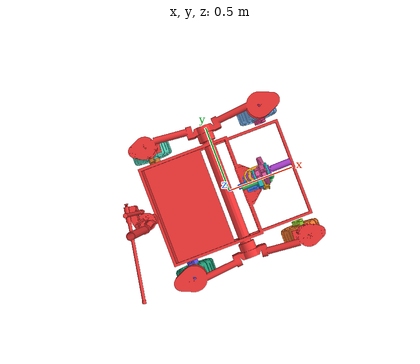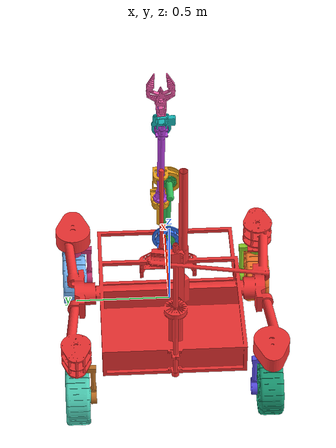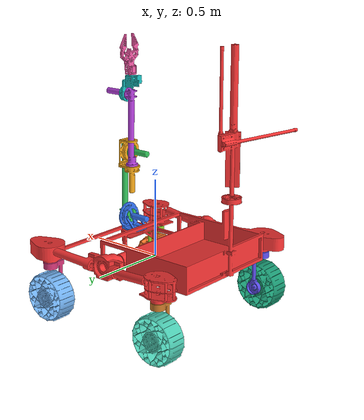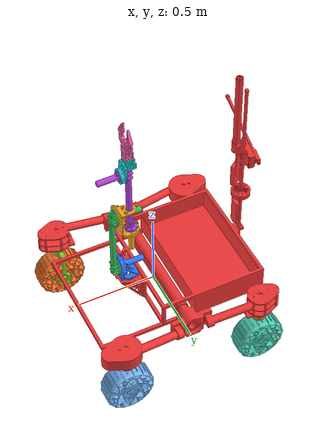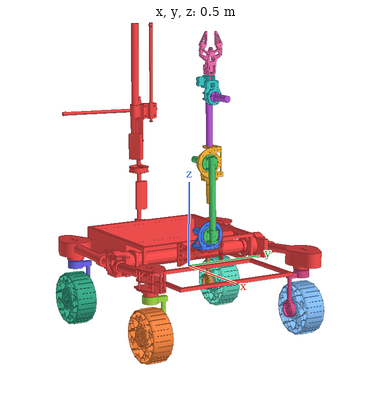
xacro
<?xml version="1.0" encoding="utf-8"?>

<!-- Post processing: Relink meshes to correct directory: package://intro_rover_description to package://urdf_viewer_pkg/URDF_Imports/Intro_URDF-->

<robot
  name="intro_rover_description">
  <link
    name="base_link">
    <inertial>
      <origin
        xyz="-0.159441508318599 -0.00201297047389094 0.109571758615536"
        rpy="0 0 0" />
      <mass
        value="36.4066511101417" />
      <inertia
        ixx="1.5499283374339"
        ixy="-0.00132549959175393"
        ixz="0.0644564045339533"
        iyy="1.39540056224361"
        iyz="6.22362010171048E-06"
        izz="2.75295987581913" />
    </inertial>
    <visual>
      <origin
        xyz="0 0 0"
        rpy="0 0 0" />
      <geometry>
        <mesh
          filename="package://urdf_viewer_pkg/URDF_Imports/Intro_URDF/meshes/base_link.STL" />
      </geometry>
      <material
        name="">
        <color
          rgba="0.95 0.20 0.20 1" />
      </material>
    </visual>
    <collision>
      <origin
        xyz="0 0 0"
        rpy="0 0 0" />
      <geometry>
        <mesh
          filename="package://urdf_viewer_pkg/URDF_Imports/Intro_URDF/meshes/base_link.STL" />
      </geometry>
    </collision>
  </link>
  <link
    name="shoulder_yaw_link">
    <inertial>
      <origin
        xyz="0.0158551675973452 6.95941140680213E-07 0.0434857349337384"
        rpy="0 0 0" />
      <mass
        value="1.28741900135628" />
      <inertia
        ixx="0.00292349927117085"
        ixy="1.26979561584058E-09"
        ixz="-4.49015826092812E-05"
        iyy="0.00200345578289186"
        iyz="-4.12395757002729E-05"
        izz="0.00245365261314516" />
    </inertial>
    <visual>
      <origin
        xyz="0 0 0"
        rpy="0 0 0" />
      <geometry>
        <mesh
          filename="package://urdf_viewer_pkg/URDF_Imports/Intro_URDF/meshes/shoulder_yaw_link.STL" />
      </geometry>
      <material
        name="">
        <color
          rgba="0.20 0.45 0.95 1" />
      </material>
    </visual>
    <collision>
      <origin
        xyz="0 0 0"
        rpy="0 0 0" />
      <geometry>
        <mesh
          filename="package://urdf_viewer_pkg/URDF_Imports/Intro_URDF/meshes/shoulder_yaw_link.STL" />
      </geometry>
    </collision>
  </link>
  <joint
    name="shoulder_yaw"
    type="continuous">
    <origin
      xyz="0.17253 0 0.14797"
      rpy="0 0 0" />
    <parent
      link="base_link" />
    <child
      link="shoulder_yaw_link" />
    <axis
      xyz="0 0 -1" />
  </joint>
  <link
    name="shoulder_pitch_link">
    <inertial>
      <origin
        xyz="-0.235784030734697 0.160725027988444 0.00442874565751497"
        rpy="0 0 0" />
      <mass
        value="1.26648994974177" />
      <inertia
        ixx="0.000697924927192797"
        ixy="-6.55293455479423E-09"
        ixz="1.59937183603079E-05"
        iyy="0.00183457112677586"
        iyz="-3.96469317634386E-07"
        izz="0.00161083464347003" />
    </inertial>
    <visual>
      <origin
        xyz="0 0 0"
        rpy="0 0 0" />
      <geometry>
        <mesh
          filename="package://urdf_viewer_pkg/URDF_Imports/Intro_URDF/meshes/shoulder_pitch_link.STL" />
      </geometry>
      <material
        name="">
        <color
          rgba="0.20 0.75 0.35 1" />
      </material>
    </visual>
    <collision>
      <origin
        xyz="0 0 0"
        rpy="0 0 0" />
      <geometry>
        <mesh
          filename="package://urdf_viewer_pkg/URDF_Imports/Intro_URDF/meshes/shoulder_pitch_link.STL" />
      </geometry>
    </collision>
  </link>
  <joint
    name="shoulder_pitch"
    type="revolute">
    <origin
      xyz="-0.10715 0 0.076542"
      rpy="1.5708 1.5708 0" />
    <parent
      link="shoulder_yaw_link" />
    <child
      link="shoulder_pitch_link" />
    <axis
      xyz="0 -1 0" />
    <limit
      lower="-1.57"
      upper="1.57"
      effort="10"
      velocity="1" />
  </joint>
  <link
    name="elbow_pitch_link">
    <inertial>
      <origin
        xyz="-0.0297946731431505 0.124653021086681 -0.0420890356639063"
        rpy="0 0 0" />
      <mass
        value="1.25099522762874" />
      <inertia
        ixx="0.00183995874881748"
        ixy="-1.41543826655457E-06"
        ixz="2.64316237326258E-06"
        iyy="0.00261608706667929"
        iyz="-5.00214358567953E-06"
        izz="0.00198096232555921" />
    </inertial>
    <visual>
      <origin
        xyz="0 0 0"
        rpy="0 0 0" />
      <geometry>
        <mesh
          filename="package://urdf_viewer_pkg/URDF_Imports/Intro_URDF/meshes/elbow_pitch_link.STL" />
      </geometry>
      <material
        name="">
        <color
          rgba="0.95 0.65 0.10 1" />
      </material>
    </visual>
    <collision>
      <origin
        xyz="0 0 0"
        rpy="0 0 0" />
      <geometry>
        <mesh
          filename="package://urdf_viewer_pkg/URDF_Imports/Intro_URDF/meshes/elbow_pitch_link.STL" />
      </geometry>
    </collision>
  </link>
  <joint
    name="elbow_pitch"
    type="revolute">
    <origin
      xyz="-0.42291 0.0032138 0.0097054"
      rpy="-0.60031 -1.5496 0.60041" />
    <parent
      link="shoulder_pitch_link" />
    <child
      link="elbow_pitch_link" />
    <axis
      xyz="0 -1 0" />
    <limit
      lower="-1.57"
      upper="1.57"
      effort="10"
      velocity="1" />
  </joint>
  <link
    name="elbow_roll_link">
    <inertial>
      <origin
        xyz="0.439831344616685 0.000390168758616118 -0.0325375284483432"
        rpy="0 0 0" />
      <mass
        value="0.902549918350809" />
      <inertia
        ixx="0.000517749746345938"
        ixy="7.8229583537438E-08"
        ixz="-6.17860381651957E-08"
        iyy="0.00152828965226638"
        iyz="1.03546709215782E-06"
        izz="0.00144187509239469" />
    </inertial>
    <visual>
      <origin
        xyz="0 0 0"
        rpy="0 0 0" />
      <geometry>
        <mesh
          filename="package://urdf_viewer_pkg/URDF_Imports/Intro_URDF/meshes/elbow_roll_link.STL" />
      </geometry>
      <material
        name="">
        <color
          rgba="0.70 0.25 0.85 1" />
      </material>
    </visual>
    <collision>
      <origin
        xyz="0 0 0"
        rpy="0 0 0" />
      <geometry>
        <mesh
          filename="package://urdf_viewer_pkg/URDF_Imports/Intro_URDF/meshes/elbow_roll_link.STL" />
      </geometry>
    </collision>
  </link>
  <joint
    name="elbow_roll"
    type="continuous">
    <origin
      xyz="-0.046 0.09095 -0.252"
      rpy="-1.557 -1.5708 3.1158" />
    <parent
      link="elbow_pitch_link" />
    <child
      link="elbow_roll_link" />
    <axis
      xyz="-1 0 0" />
  </joint>
  <link
    name="wrist_pitch_link">
    <inertial>
      <origin
        xyz="0.00337802196193002 -0.17277332026333 0.0398409446348469"
        rpy="0 0 0" />
      <mass
        value="0.563910634986513" />
      <inertia
        ixx="0.000497100399809216"
        ixy="1.97405722908446E-08"
        ixz="4.08261204099842E-06"
        iyy="0.000704036979748593"
        iyz="-4.63893045090232E-07"
        izz="0.000364951401033147" />
    </inertial>
    <visual>
      <origin
        xyz="0 0 0"
        rpy="0 0 0" />
      <geometry>
        <mesh
          filename="package://urdf_viewer_pkg/URDF_Imports/Intro_URDF/meshes/wrist_pitch_link.STL" />
      </geometry>
      <material
        name="">
        <color
          rgba="0.10 0.75 0.75 1" />
      </material>
    </visual>
    <collision>
      <origin
        xyz="0 0 0"
        rpy="0 0 0" />
      <geometry>
        <mesh
          filename="package://urdf_viewer_pkg/URDF_Imports/Intro_URDF/meshes/wrist_pitch_link.STL" />
      </geometry>
    </collision>
  </link>
  <joint
    name="wrist_pitch"
    type="revolute">
    <origin
      xyz="0.6275 0.0024183 -0.20169"
      rpy="-1.5708 0.01199 -1.5708" />
    <parent
      link="elbow_roll_link" />
    <child
      link="wrist_pitch_link" />
    <axis
      xyz="0 1 0" />
    <limit
      lower="-1.57"
      upper="1.57"
      effort="10"
      velocity="1" />
  </joint>
  <link
    name="wrist_roll_link">
    <inertial>
      <origin
        xyz="0.099122460242409 -0.00022817475073067 -0.00311535948377381"
        rpy="0 0 0" />
      <mass
        value="0.322364394266088" />
      <inertia
        ixx="9.31307836334151E-05"
        ixy="4.20216602442221E-07"
        ixz="-1.64779179961156E-05"
        iyy="0.000262714436743239"
        iyz="-1.80298566942832E-07"
        izz="0.000285812515796148" />
    </inertial>
    <visual>
      <origin
        xyz="0 0 0"
        rpy="0 0 0" />
      <geometry>
        <mesh
          filename="package://urdf_viewer_pkg/URDF_Imports/Intro_URDF/meshes/wrist_roll_link.STL" />
      </geometry>
      <material
        name="">
        <color
          rgba="0.95 0.35 0.65 1" />
      </material>
    </visual>
    <collision>
      <origin
        xyz="0 0 0"
        rpy="0 0 0" />
      <geometry>
        <mesh
          filename="package://urdf_viewer_pkg/URDF_Imports/Intro_URDF/meshes/wrist_roll_link.STL" />
      </geometry>
    </collision>
  </link>
  <joint
    name="wrist_roll"
    type="continuous">
    <origin
      xyz="-0.00381 -0.18515 0.12524"
      rpy="1.5871 -1.5404 -3.1416" />
    <parent
      link="wrist_pitch_link" />
    <child
      link="wrist_roll_link" />
    <axis
      xyz="1 0 0" />
  </joint>
  <link
    name="fr_swerve_yaw_link">
    <inertial>
      <origin
        xyz="4.34003277971495E-06 0.0424244704988336 -0.0524917309491004"
        rpy="0 0 0" />
      <mass
        value="0.554469856268406" />
      <inertia
        ixx="0.000560561824500187"
        ixy="4.05462009493962E-08"
        ixz="4.3011706837314E-08"
        iyy="0.000539238754731832"
        iyz="3.10309355888949E-06"
        izz="0.000491898849757682" />
    </inertial>
    <visual>
      <origin
        xyz="0 0 0"
        rpy="0 0 0" />
      <geometry>
        <mesh
          filename="package://urdf_viewer_pkg/URDF_Imports/Intro_URDF/meshes/fr_swerve_yaw_link.STL" />
      </geometry>
      <material
        name="">
        <color
          rgba="0.55 0.80 0.15 1" />
      </material>
    </visual>
    <collision>
      <origin
        xyz="0 0 0"
        rpy="0 0 0" />
      <geometry>
        <mesh
          filename="package://urdf_viewer_pkg/URDF_Imports/Intro_URDF/meshes/fr_swerve_yaw_link.STL" />
      </geometry>
    </collision>
  </link>
  <joint
    name="fr_swerve_yaw"
    type="revolute">
    <origin
      xyz="0.4237 -0.51488 -0.048437"
      rpy="0 0 0" />
    <parent
      link="base_link" />
    <child
      link="fr_swerve_yaw_link" />
    <axis
      xyz="0 0 1" />
    <limit
      lower="-1.57"
      upper="1.57"
      effort="10"
      velocity="1" />
  </joint>
  <link
    name="fr_wheel_link">
    <inertial>
      <origin
        xyz="-0.000282196686234248 0.0613279579299709 0.000113058958698342"
        rpy="0 0 0" />
      <mass
        value="1.55830616496123" />
      <inertia
        ixx="0.00835588598934043"
        ixy="-6.5860688027315E-07"
        ixz="-3.73866342561462E-06"
        iyy="0.0131006533828929"
        iyz="8.49263746401124E-07"
        izz="0.00835773873287842" />
    </inertial>
    <visual>
      <origin
        xyz="0 0 0"
        rpy="0 0 0" />
      <geometry>
        <mesh
          filename="package://urdf_viewer_pkg/URDF_Imports/Intro_URDF/meshes/fr_wheel_link.STL" />
      </geometry>
      <material
        name="">
        <color
          rgba="0.95 0.45 0.15 1" />
      </material>
    </visual>
    <collision>
      <origin
        xyz="0 0 0"
        rpy="0 0 0" />
      <geometry>
        <mesh
          filename="package://urdf_viewer_pkg/URDF_Imports/Intro_URDF/meshes/fr_wheel_link.STL" />
      </geometry>
    </collision>
  </link>
  <joint
    name="fr_wheel"
    type="continuous">
    <origin
      xyz="0.000212360752061935 -0.0574662142422728 -0.201583720606049"
      rpy="0 0 0" />
    <parent
      link="fr_swerve_yaw_link" />
    <child
      link="fr_wheel_link" />
    <axis
      xyz="0 1 0" />
  </joint>
  <link
    name="br_swerve_yaw_link">
    <inertial>
      <origin
        xyz="-3.15923268445761E-06 0.0424244705029883 -0.0524546052946393"
        rpy="0 0 0" />
      <mass
        value="0.554469856210505" />
      <inertia
        ixx="0.000560566478987308"
        ixy="-3.09023319314787E-08"
        ixz="2.97793989119187E-08"
        iyy="0.000539238754672639"
        iyz="3.40566695719425E-06"
        izz="0.000491894195200067" />
    </inertial>
    <visual>
      <origin
        xyz="0 0 0"
        rpy="0 0 0" />
      <geometry>
        <mesh
          filename="package://urdf_viewer_pkg/URDF_Imports/Intro_URDF/meshes/br_swerve_yaw_link.STL" />
      </geometry>
      <material
        name="">
        <color
          rgba="0.35 0.30 0.90 1" />
      </material>
    </visual>
    <collision>
      <origin
        xyz="0 0 0"
        rpy="0 0 0" />
      <geometry>
        <mesh
          filename="package://urdf_viewer_pkg/URDF_Imports/Intro_URDF/meshes/br_swerve_yaw_link.STL" />
      </geometry>
    </collision>
  </link>
  <joint
    name="br_swerve_yaw"
    type="revolute">
    <origin
      xyz="-0.4663 -0.51488 -0.025937"
      rpy="0 0 0" />
    <parent
      link="base_link" />
    <child
      link="br_swerve_yaw_link" />
    <axis
      xyz="0 0 1" />
    <limit
      lower="-1.57"
      upper="1.57"
      effort="10"
      velocity="1" />
  </joint>
  <link
    name="br_wheel_link">
    <inertial>
      <origin
        xyz="0.000274417710271369 0.0613279575864227 -0.000130817450830711"
        rpy="0 0 0" />
      <mass
        value="1.5583061724315" />
      <inertia
        ixx="0.00835541790433353"
        ixy="6.03089845226322E-07"
        ixz="-3.59042628233229E-06"
        iyy="0.0131006533894266"
        iyz="-8.89548597661312E-07"
        izz="0.00835820682593188" />
    </inertial>
    <visual>
      <origin
        xyz="0 0 0"
        rpy="0 0 0" />
      <geometry>
        <mesh
          filename="package://urdf_viewer_pkg/URDF_Imports/Intro_URDF/meshes/br_wheel_link.STL" />
      </geometry>
      <material
        name="">
        <color
          rgba="0.10 0.60 0.45 1" />
      </material>
    </visual>
    <collision>
      <origin
        xyz="0 0 0"
        rpy="0 0 0" />
      <geometry>
        <mesh
          filename="package://urdf_viewer_pkg/URDF_Imports/Intro_URDF/meshes/br_wheel_link.STL" />
      </geometry>
    </collision>
  </link>
  <joint
    name="br_wheel"
    type="continuous">
    <origin
      xyz="-0.00021041711699632 -0.0574662142420289 -0.201522792567001"
      rpy="0 0 0" />
    <parent
      link="br_swerve_yaw_link" />
    <child
      link="br_wheel_link" />
    <axis
      xyz="0 1 0" />
  </joint>
  <link
    name="fl_swerve_yaw_link">
    <inertial>
      <origin
        xyz="3.15923268462415E-06 -0.0424244705024794 -0.0524546052946392"
        rpy="0 0 0" />
      <mass
        value="0.554469856210505" />
      <inertia
        ixx="0.000560566478987308"
        ixy="-3.0902331931218E-08"
        ixz="-2.97793989118636E-08"
        iyy="0.000539238754672638"
        iyz="-3.40566695719434E-06"
        izz="0.000491894195200066" />
    </inertial>
    <visual>
      <origin
        xyz="0 0 0"
        rpy="0 0 0" />
      <geometry>
        <mesh
          filename="package://urdf_viewer_pkg/URDF_Imports/Intro_URDF/meshes/fl_swerve_yaw_link.STL" />
      </geometry>
      <material
        name="">
        <color
          rgba="0.80 0.20 0.45 1" />
      </material>
    </visual>
    <collision>
      <origin
        xyz="0 0 0"
        rpy="0 0 0" />
      <geometry>
        <mesh
          filename="package://urdf_viewer_pkg/URDF_Imports/Intro_URDF/meshes/fl_swerve_yaw_link.STL" />
      </geometry>
    </collision>
  </link>
  <joint
    name="fl_swerve_yaw"
    type="revolute">
    <origin
      xyz="0.4237 0.51488 -0.025938"
      rpy="0 0 0" />
    <parent
      link="base_link" />
    <child
      link="fl_swerve_yaw_link" />
    <axis
      xyz="0 0 1" />
    <limit
      lower="-1.57"
      upper="1.57"
      effort="10"
      velocity="1" />
  </joint>
  <link
    name="fl_wheel_link">
    <inertial>
      <origin
        xyz="-0.000274419026007722 -0.0613279587848613 -0.000130819137951349"
        rpy="0 0 0" />
      <mass
        value="1.55830614121036" />
      <inertia
        ixx="0.00835541793677214"
        ixy="6.0309423636897E-07"
        ixz="3.59047904535273E-06"
        iyy="0.0131006533426921"
        iyz="8.89553079013513E-07"
        izz="0.00835820674781625" />
    </inertial>
    <visual>
      <origin
        xyz="0 0 0"
        rpy="0 0 0" />
      <geometry>
        <mesh
          filename="package://urdf_viewer_pkg/URDF_Imports/Intro_URDF/meshes/fl_wheel_link.STL" />
      </geometry>
      <material
        name="">
        <color
          rgba="0.45 0.70 0.95 1" />
      </material>
    </visual>
    <collision>
      <origin
        xyz="0 0 0"
        rpy="0 0 0" />
      <geometry>
        <mesh
          filename="package://urdf_viewer_pkg/URDF_Imports/Intro_URDF/meshes/fl_wheel_link.STL" />
      </geometry>
    </collision>
  </link>
  <joint
    name="fl_wheel"
    type="continuous">
    <origin
      xyz="0.000210417116996542 0.0574662142421208 -0.201522792567001"
      rpy="0 0 0" />
    <parent
      link="fl_swerve_yaw_link" />
    <child
      link="fl_wheel_link" />
    <axis
      xyz="0 -1 0" />
  </joint>
  <link
    name="bl_swerve_yaw_link">
    <inertial>
      <origin
        xyz="-4.34003277988149E-06 -0.0424244705000301 -0.0524917309491003"
        rpy="0 0 0" />
      <mass
        value="0.554469856268406" />
      <inertia
        ixx="0.000560561824500187"
        ixy="4.05462009493804E-08"
        ixz="-4.30117068375034E-08"
        iyy="0.000539238754731833"
        iyz="-3.10309355888949E-06"
        izz="0.000491898849757682" />
    </inertial>
    <visual>
      <origin
        xyz="0 0 0"
        rpy="0 0 0" />
      <geometry>
        <mesh
          filename="package://urdf_viewer_pkg/URDF_Imports/Intro_URDF/meshes/bl_swerve_yaw_link.STL" />
      </geometry>
      <material
        name="">
        <color
          rgba="0.75 0.45 0.15 1" />
      </material>
    </visual>
    <collision>
      <origin
        xyz="0 0 0"
        rpy="0 0 0" />
      <geometry>
        <mesh
          filename="package://urdf_viewer_pkg/URDF_Imports/Intro_URDF/meshes/bl_swerve_yaw_link.STL" />
      </geometry>
    </collision>
  </link>
  <joint
    name="bl_swerve_yaw"
    type="revolute">
    <origin
      xyz="-0.466299868071487 0.514883785757828 -0.0484375000000003"
      rpy="0 0 0" />
    <parent
      link="base_link" />
    <child
      link="bl_swerve_yaw_link" />
    <axis
      xyz="0 0 1" />
    <limit
      lower="-1.57"
      upper="1.57"
      effort="10"
      velocity="1" />
  </joint>
  <link
    name="bl_wheel_link">
    <inertial>
      <origin
        xyz="0.000282197956260499 -0.0613279602456375 0.000113059695933032"
        rpy="0 0 0" />
      <mass
        value="1.55830610436698" />
      <inertia
        ixx="0.00835588596965035"
        ixy="-6.58610929599069E-07"
        ixz="3.73869748639089E-06"
        iyy="0.0131006532908212"
        iyz="-8.49265952041755E-07"
        izz="0.0083577386599343" />
    </inertial>
    <visual>
      <origin
        xyz="0 0 0"
        rpy="0 0 0" />
      <geometry>
        <mesh
          filename="package://urdf_viewer_pkg/URDF_Imports/Intro_URDF/meshes/bl_wheel_link.STL" />
      </geometry>
      <material
        name="">
        <color
          rgba="0.30 0.80 0.70 1" />
      </material>
    </visual>
    <collision>
      <origin
        xyz="0 0 0"
        rpy="0 0 0" />
      <geometry>
        <mesh
          filename="package://urdf_viewer_pkg/URDF_Imports/Intro_URDF/meshes/bl_wheel_link.STL" />
      </geometry>
    </collision>
  </link>
  <joint
    name="bl_wheel"
    type="continuous">
    <origin
      xyz="-0.000212360752061991 0.0574662142421849 -0.201583720606049"
      rpy="0 0 0" />
    <parent
      link="bl_swerve_yaw_link" />
    <child
      link="bl_wheel_link" />
    <axis
      xyz="0 -1 0" />
  </joint>
</robot>
